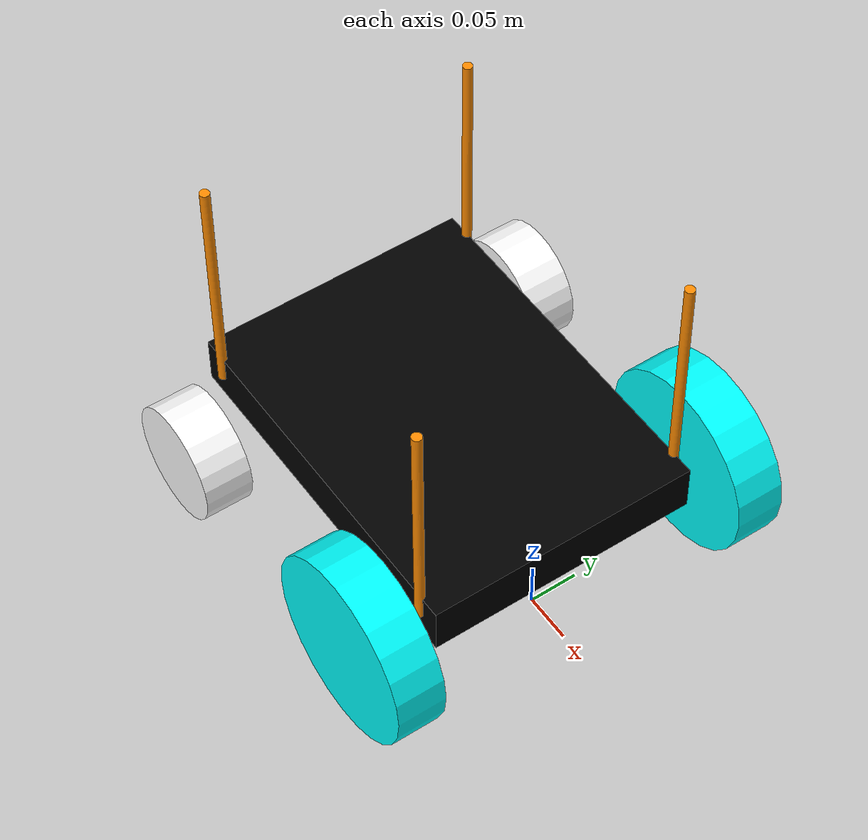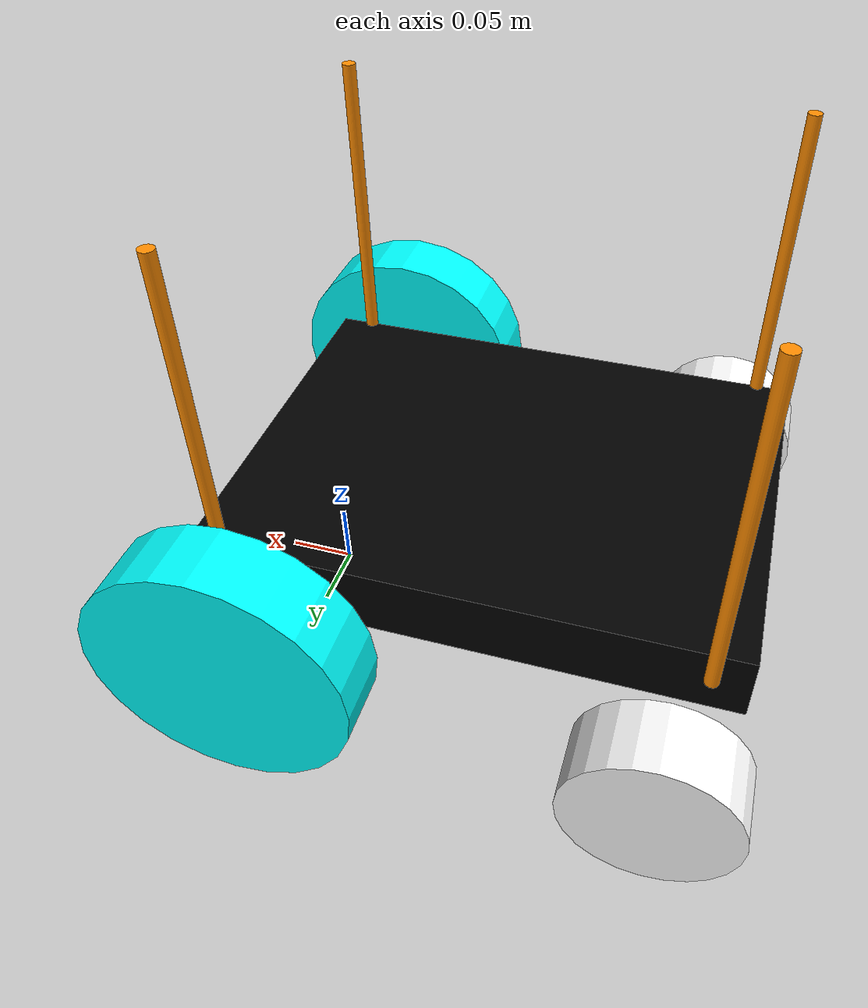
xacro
<?xml version="1.0"?>
<robot xmlns:xacro="http://www.ros.org/wiki/xacro" >

    <xacro:include filename="inertial_macros.xacro"/>

    <xacro:property name="wheel_radius" value="0.095"/>
    <xacro:property name="wheel_thickness" value="0.05"/>
    <xacro:property name="wheel_mass" value="0.05"/>
    <xacro:property name="wheel_offset_x" value="0.2875"/>
    <xacro:property name="wheel_offset_y" value="0.1875"/>
    <xacro:property name="wheel_offset_z" value="0.095"/>
    <xacro:property name="caster_wheel_radius" value="0.06"/>
    <xacro:property name="caster_wheel_thickness" value="0.05"/>
    <xacro:property name="caster_wheel_mass" value="0.01"/>
    <xacro:property name="caster_wheel_offset_x" value="0.2875"/>
    <xacro:property name="caster_wheel_offset_z" value="${wheel_offset_z - wheel_radius + caster_wheel_radius}"/>

    <!-- BASE LINK -->

    <link name="base_link">

    </link>

    <!-- BASE_FOOTPRINT LINK -->

    <joint name="base_footprint_joint" type="fixed">
        <parent link="base_link"/>
        <child link="base_footprint"/>
        <origin xyz="0 0 0" rpy="0 0 0"/>
    </joint>

    <link name="base_footprint">
    </link>

    <!-- CHASSIS LINK -->
    <joint name="base_joint" type="fixed">
        <parent link="base_footprint"/>
        <child link="base_plate"/>
        <origin xyz="${-wheel_offset_x/2} 0 ${wheel_offset_z}"/>
    </joint>

    <link name="base_plate">
        <visual>
            <geometry>
                <box size="0.38 .28 .05" />
            </geometry>
            <origin rpy="0 0 0" xyz="0 0 0.025" />
            <material name="black">
                <color rgba="0 0 0 1" />
            </material>
        </visual>
        <collision>
            <origin xyz="0 0 .025"/>
            <geometry>
                <box size="0.38 0.28 0.05"/>
            </geometry>
        </collision>
        <xacro:inertial_box mass="0.5" x="0.38" y="0.28" z="0.05">
            <origin xyz="0 0 0" rpy="0 0 0"/>
        </xacro:inertial_box>
    </link>

    <joint name="base_to_second_layercylinder_1" type="fixed">
        <parent link="base_plate"/>
        <child link="second_layercylinder_1"/>
        <origin xyz="0.165 0.14 0.025"/>
    </joint>

    <link name="second_layercylinder_1">
        <visual>
            <geometry>
                <cylinder length="0.25" radius="0.005" />
            </geometry>
            <origin xyz="0 0 0.125" rpy="0 0 0"/>
            <material name="gold">
                <color rgba="1 0.549 0 1.0" />
            </material>
        </visual>
    </link>

    <joint name="base_to_second_layercylinder_2" type="fixed">
        <parent link="base_plate"/>
        <child link="second_layercylinder_2"/>
        <origin xyz="-0.165 0.14 0.025"/>
    </joint>

    <link name="second_layercylinder_2">
        <visual>
            <geometry>
                <cylinder length="0.25" radius="0.005" />
            </geometry>
            <origin rpy="0 0 0" xyz="0 0 0.125" />
            <material name="gold"/>
        </visual>
    </link>

    <joint name="base_to_second_layercylinder_3" type="fixed">
        <parent link="base_plate"/>
        <child link="second_layercylinder_3"/>
        <origin xyz="-0.165 -0.14 0.025"/>
    </joint>

    <link name="second_layercylinder_3">
        <visual>
            <geometry>
                <cylinder length="0.25" radius="0.005" />
            </geometry>
            <origin rpy="0 0 0" xyz="0 0 0.125" />
            <material name="gold"/>
        </visual>
    </link>

    <joint name="base_to_second_layercylinder_4" type="fixed">
        <parent link="base_plate"/>
        <child link="second_layercylinder_4"/>
        <origin xyz="0.165 -0.14 0.025"/>
    </joint>

    <link name="second_layercylinder_4">
        <visual>
            <geometry>
                <cylinder length="0.25" radius="0.005" />
            </geometry>
            <origin rpy="0 0 0" xyz="0 0 0.125" />
            <material name="gold"/>
        </visual>
    </link>

    <!-- LEFT WHEEL LINK -->

    <joint name="left_wheel_joint" type="continuous">
        <parent link="base_link"/>
        <child link="left_wheel"/>
        <origin xyz="0 ${wheel_offset_y} ${wheel_offset_z}" rpy="-${pi/2} 0 0" />
        <axis xyz="0 0 1"/>
    </joint>

    <link name="left_wheel">
        <visual>
            <geometry>
                <cylinder radius="${wheel_radius}" length="${wheel_thickness}"/>
            </geometry>
            <material name="cyan">
                <color rgba="0 1 1 1" />
            </material>
        </visual>
        <collision>
            <geometry>
                <sphere radius="${wheel_radius}"/>
            </geometry>
        </collision>
        <xacro:inertial_cylinder mass="${wheel_mass}" length="${wheel_thickness}" radius="${wheel_radius}">
            <origin xyz="0 0 0" rpy="0 0 0"/>
        </xacro:inertial_cylinder>
    </link>

    <gazebo reference="left_wheel">
        <material>Gazebo/Blue</material>
    </gazebo>

    <!-- RIGHT WHEEL LINK -->

    <joint name="right_wheel_joint" type="continuous">
        <parent link="base_link"/>
        <child link="right_wheel"/>
        <origin xyz="0 ${-wheel_offset_y} ${wheel_offset_z}" rpy="${pi/2} 0 0" />
        <axis xyz="0 0 -1"/>
    </joint>

    <link name="right_wheel">
        <visual>
            <geometry>
                <cylinder radius="${wheel_radius}" length="${wheel_thickness}"/>
            </geometry>
            <material name="cyan">
                <color rgba="0 1 1 1" />
            </material>
        </visual>
        <collision>
            <geometry>
                <sphere radius="${wheel_radius}"/>
            </geometry>
        </collision>
        <xacro:inertial_cylinder mass="${wheel_mass}" length="${wheel_thickness}" radius="${wheel_radius}">
            <origin xyz="0 0 0" rpy="0 0 0"/>
        </xacro:inertial_cylinder>
    </link>

    <gazebo reference="right_wheel">
        <material>Gazebo/Blue</material>
    </gazebo>

    <!-- CASTER WHEEL LINK -->

    <joint name="left_caster_wheel_joint" type="continuous">
        <parent link="base_link"/>
        <child link="left_caster_wheel"/>
        <origin xyz="${-caster_wheel_offset_x} ${wheel_offset_y} ${caster_wheel_offset_z}" rpy="${pi/2} 0 0" />
        <axis xyz="0 0 1"/>
    </joint>

    <link name="left_caster_wheel">
        <visual>
            <geometry>
                <cylinder radius="${caster_wheel_radius}" length="${caster_wheel_thickness}"/>
            </geometry>
            <material name="white">
                <color rgba="1 1 1 1" />
            </material>
        </visual>
        <collision>
            <geometry>
                <sphere radius="${caster_wheel_radius}"/>
            </geometry>
        </collision>
        <xacro:inertial_cylinder mass="${caster_wheel_mass}" length="${caster_wheel_thickness}" radius="${caster_wheel_radius}">
            <origin xyz="0 0 0" rpy="0 0 0"/>
        </xacro:inertial_cylinder>
    </link>

    <gazebo reference="left_caster_wheel">
        <material>Gazebo/White</material>
        <mu1 value="0.001"/>
        <mu2 value="0.001"/>
    </gazebo>

    <joint name="right_caster_wheel_joint" type="continuous">
        <parent link="base_link"/>
        <child link="right_caster_wheel"/>
        <origin xyz="${-caster_wheel_offset_x} ${-wheel_offset_y} ${caster_wheel_offset_z}" rpy="${pi/2} 0 0" />
        <axis xyz="0 0 -1"/>
    </joint>

    <link name="right_caster_wheel">
        <visual>
            <geometry>
                <cylinder radius="${caster_wheel_radius}" length="${caster_wheel_thickness}"/>
            </geometry>
            <material name="white"/>
        </visual>
        <collision>
            <geometry>
                <sphere radius="${caster_wheel_radius}"/>
            </geometry>
        </collision>
        <xacro:inertial_cylinder mass="${caster_wheel_mass}" length="${caster_wheel_thickness}" radius="${caster_wheel_radius}">
            <origin xyz="0 0 0" rpy="0 0 0"/>
        </xacro:inertial_cylinder>
    </link>

    <gazebo reference="right_caster_wheel">
        <material>Gazebo/White</material>
        <mu1 value="0.001"/>
        <mu2 value="0.001"/>
    </gazebo>
</robot>
